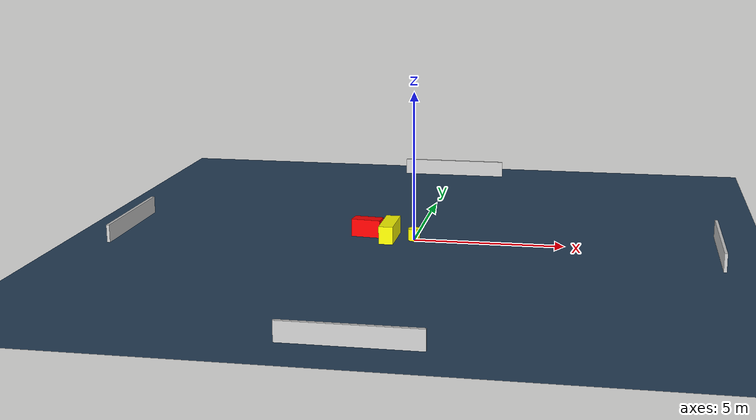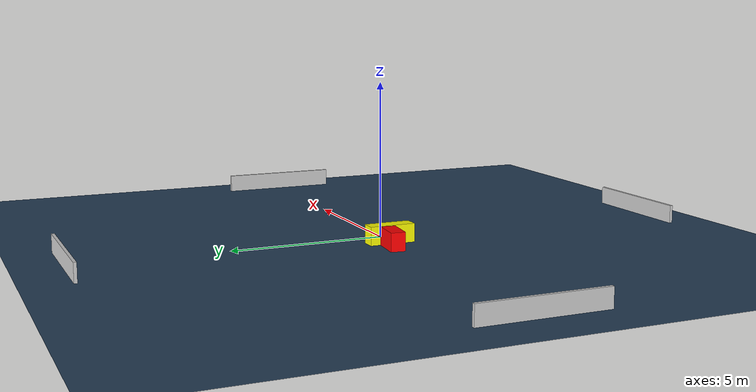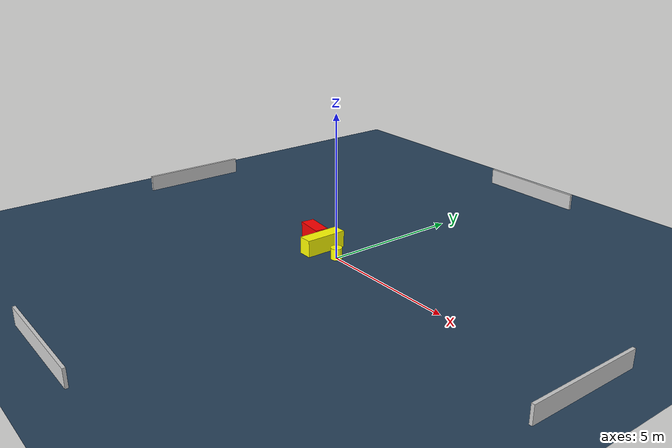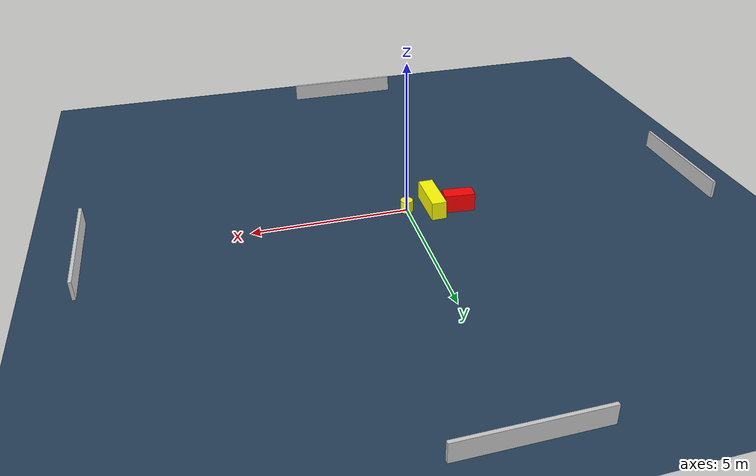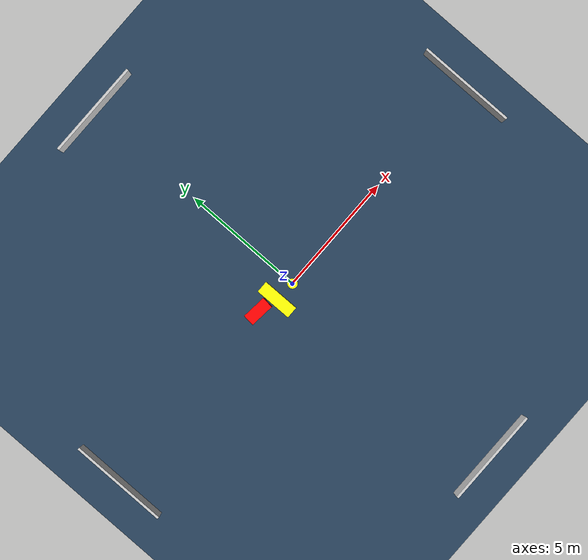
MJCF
<?xml version="1.0" ?>
<mujoco model="generated_environment">
  <option timestep="0.01" integrator="RK4" cone="elliptic"/>
  <default>
    <geom density="1"/>
  </default>
  <asset>
    <texture builtin="gradient" height="3072" name="skybox" rgb1="0.3 0.5 0.7" rgb2="0 0 0" type="skybox" width="512"/>
    <texture builtin="checker" height="300" name="groundplane" rgb1="0.2 0.3 0.4" rgb2="0.1 0.2 0.3" type="2d" width="300"/>
    <material name="groundplane" reflectance="0.2" texrepeat="5 5" texture="groundplane"/>
  </asset>
  <worldbody>
    <light dir="0 0 -1" directional="true" pos="0 0 1.5"/>
    <geom condim="3" friction="0.5 0.005 0.001" material="groundplane" name="floor" pos="0 0 0" size="0 0 0.05" type="plane"/>
    <body name="walls">
      <geom name="wall_1" condim="4" pos="-10.0 0.0 0.3" rgba="0.800000011920929 0.800000011920929 0.800000011920929 1.0" size="0.05 2.0 0.3" type="box"/>
      <geom name="wall_2" condim="4" pos="10.0 0.0 0.3" rgba="0.800000011920929 0.800000011920929 0.800000011920929 1.0" size="0.05 2.0 0.3" type="box"/>
      <geom name="wall_3" condim="4" pos="0.0 -10.0 0.3" rgba="0.800000011920929 0.800000011920929 0.800000011920929 1.0" size="2.0 0.05 0.3" type="box"/>
      <geom name="wall_4" condim="4" pos="0.0 10.0 0.3" rgba="0.800000011920929 0.800000011920929 0.800000011920929 1.0" size="2.0 0.05 0.3" type="box"/>
    </body>
    <body name="robot">
      <joint name="joint_x" type="slide" pos="0 0 0" axis="1 0 0"/>
      <joint name="joint_y" type="slide" pos="0 0 0" axis="0 1 0"/>
      <geom name="robot" type="cylinder" pos="0.0 0.0 0.2" size="0.2 0.2 0.0" mass="5.0" friction="1.0 0.005 0.0001" condim="4" rgba="1.0 1.0 0.0 1.0"/>
    </body>
    <body name="obstacle_1_movable">
      <geom name="obstacle_1_movable" condim="4" pos="-0.8456012362847285 0.0423634917003445 0.3" euler="0 0 90.27709766526853" friction="0.0 0.005 0.001" rgba="1.0 1.0 0.0 1.0" size="0.7526589421510406 0.2412012748833 0.3" type="box" mass="0.1"/>
      <joint type="free"/>
    </body>
    <body name="obstacle_2_static">
      <geom name="obstacle_2_static" condim="4" pos="-1.6496350312821384 0.29123792936097137 0.3" euler="0 0 174.32472230971035" friction="0.0 0.005 0.001" rgba="1.0 0.0 0.0 1.0" size="0.4973912788433096 0.23614246204116346 0.3" type="box"/>
    </body>
  </worldbody>
  <actuator>
    <motor name="actuator_x" joint="joint_x" gear="1" ctrlrange="-1 1"/>
    <motor name="actuator_y" joint="joint_y" gear="1" ctrlrange="-1 1"/>
  </actuator>
</mujoco>
